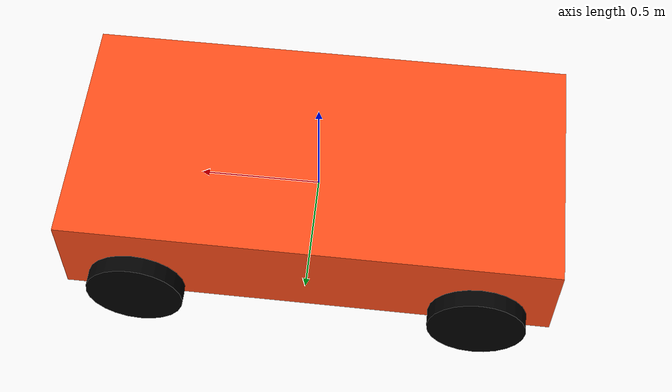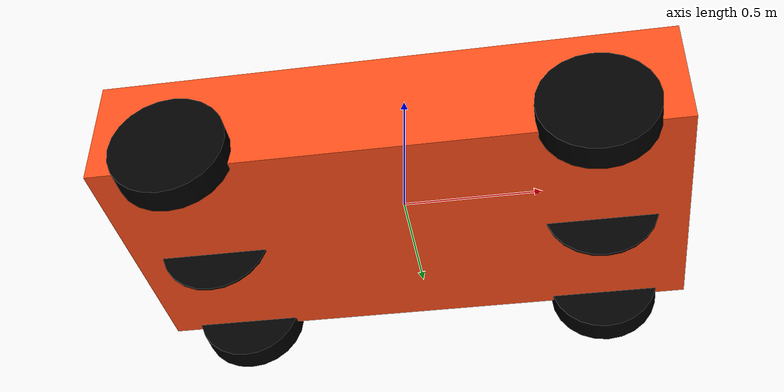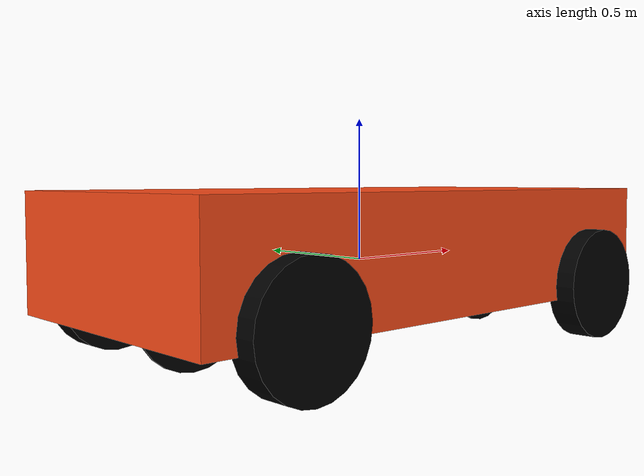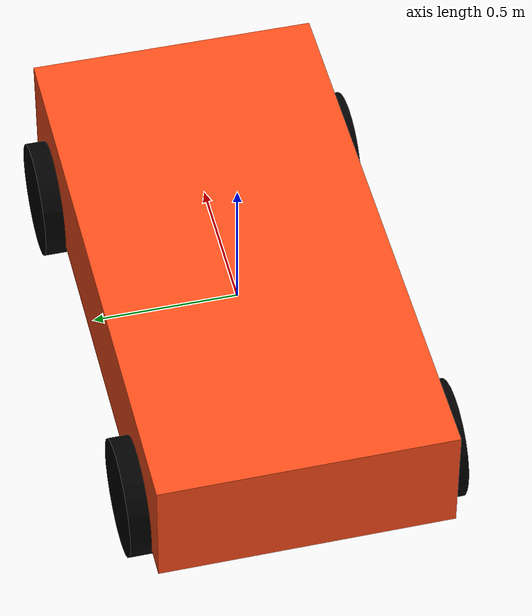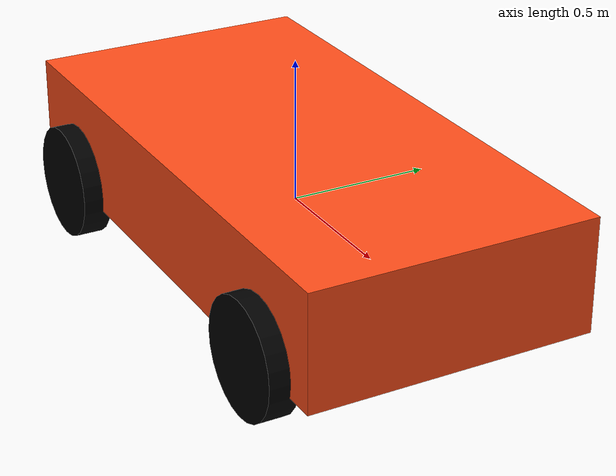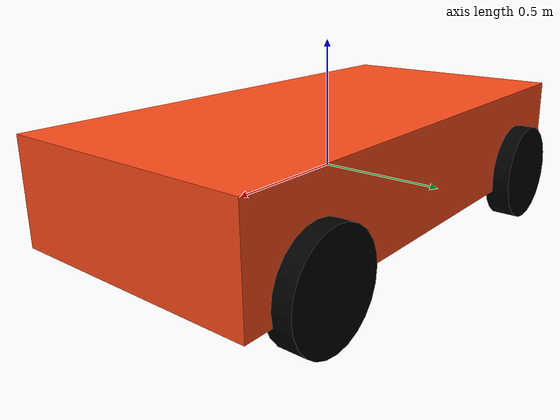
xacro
<?xml version="1.0"?>
<robot xmlns:xacro="http://www.ros.org/wiki/xacro">

    <xacro:include filename="colors.xacro" />
    <xacro:include filename="inertial_macros.xacro" />

    <link name='base_link'>
        <xacro:inertial_box mass="20" x="2" y="1" z="0.4">
            <origin xyz="0 0 0.05" rpy="0 0 0"/>
        </xacro:inertial_box>

        <visual>
          <origin xyz="0 0 0.05" rpy="0 0 0"/>
          <geometry>
            <box size="2 1 0.4"/>
          </geometry>
          <material name="orange" />
        </visual>

        <collision>
          <origin xyz="0 0 0.05" rpy="0 0 0"/>
          <geometry>
            <box size="2 1 0.4"/>
          </geometry>
        </collision>
    </link>

    <gazebo reference="base_link">
        <material>Gazebo/Orange</material>
    </gazebo>

    <link name="virtual_rear_wheel">
      <visual>
        <origin xyz="0 0 0" rpy="0 1.5708 1.5708" />
        <geometry>
          <cylinder length="0.01" radius="0.2"/>
        </geometry>
        <material name="invisible"/>
      </visual>

      <collision>
        <origin xyz="0 0 0" rpy="0 1.5708 1.5708" />
        <geometry>
          <cylinder length="0.01" radius="0.2"/>
        </geometry>
        <material name="invisible"/>
      </collision>

      <xacro:inertial_cylinder mass="1.0" length="0.01" radius="0.2">
            <origin xyz="0 0 0" rpy="0 1.5708 1.5708"/>
      </xacro:inertial_cylinder>
    </link>

    <joint name="virtual_rear_wheel_joint" type="continuous">
      <parent link="base_link"/>
      <child link="virtual_rear_wheel"/>
      <origin xyz="-0.7 0 -0.1" rpy="0 0 0"/>
      <axis xyz="0 1 0" rpy="0 0 0" />
      <limit effort="100.0" velocity="100.0"/>
      <dynamics damping="0.2"/>
    </joint>

    <link name="right_wheel_rear">
      <collision>
        <origin xyz="0 0 0" rpy="0 1.5708 1.5708" />
        <geometry>
          <cylinder length="0.1" radius="0.2"/>
        </geometry>
        <surface>
          <friction>
            <ode>
              <mu>2.0</mu>
              <mu2>2.0</mu2>
              <fdir1>0 0 1</fdir1>
            </ode>
          </friction>
        </surface>
      </collision>

      <visual>
        <origin xyz="0 0 0" rpy="0 1.5708 1.5708" />
        <geometry>
          <cylinder length="0.1" radius="0.2"/>
        </geometry>
        <material name="black"/>
      </visual>

      <xacro:inertial_cylinder mass="1.0" length="0.1" radius="0.2">
            <origin xyz="0 0 0" rpy="0 1.5708 1.5708"/>
      </xacro:inertial_cylinder>

    </link>

    <gazebo reference="right_wheel_rear">
      <material>Gazebo/Black</material>
    </gazebo>

    <joint name="base_right_wheel_rear_joint" type="continuous">
      <parent link="base_link"/>
      <child link="right_wheel_rear"/>
      <origin xyz="-0.7 0.52 -0.1" rpy="0 0 0" />
      <axis xyz="0 1 0" rpy="0 0 0" />
      <limit effort="100.0" velocity="100.0"/>
      <dynamics damping="0.2" />
    </joint>

    <link name="left_wheel_rear">
      <collision>
        <origin xyz="0 0 0" rpy="0 1.5708 1.5708" />
        <geometry>
          <cylinder length="0.1" radius="0.2"/>
        </geometry>
        <surface>
          <friction>
            <ode>
              <mu>2.0</mu>
              <mu2>2.0</mu2>
              <fdir1>0 0 1</fdir1>
            </ode>
          </friction>
        </surface>
      </collision>

      <visual>
        <origin xyz="0 0 0" rpy="0 1.5708 1.5708" />
        <geometry>
          <cylinder length="0.1" radius="0.2"/>
        </geometry>
        <material name="black"/>
      </visual>

      <xacro:inertial_cylinder mass="1.0" length="0.1" radius="0.2">
            <origin xyz="0 0 0" rpy="0 1.5708 1.5708"/>
      </xacro:inertial_cylinder>

    </link>

    <gazebo reference="left_wheel_rear">
      <material>Gazebo/Black</material>
    </gazebo>

    <joint name="base_left_wheel_rear_joint" type="continuous">
      <parent link="base_link"/>
      <child link="left_wheel_rear"/>
      <origin xyz="-0.7 -0.52 -0.1" rpy="0 0 0" />
      <axis xyz="0 1 0" rpy="0 0 0" />
      <limit effort="100.0" velocity="100.0"/>
      <dynamics damping="0.2" />
    </joint>

    <link name="virtual_front_wheel">
      <visual>
        <origin xyz="0 0 0" rpy="0 1.5708 1.5708" />
        <geometry>
          <cylinder length="0.01" radius="0.2"/>
        </geometry>
        <material name="invisible"/>
      </visual>

      <collision>
        <origin xyz="0 0 0" rpy="0 1.5708 1.5708" />
        <geometry>
          <cylinder length="0.01" radius="0.2"/>
        </geometry>
        <material name="invisible"/>
      </collision>

      <xacro:inertial_cylinder mass="1.0" length="0.01" radius="0.2">
            <origin xyz="0 0 0" rpy="0 1.5708 1.5708"/>
      </xacro:inertial_cylinder>
    </link>

    <link name="virtual_steer">
      <visual>
        <origin xyz="0 0 0" rpy="0 0 0" />
        <geometry>
          <cylinder length="0.02" radius="0.04"/>
        </geometry>
        <material name="invisible"/>
      </visual>

      <collision>
        <origin xyz="0 0 0" rpy="0 0 0"/>
        <geometry>
          <cylinder radius="0.04" length="0.02"/>
        </geometry>
      </collision>

      <xacro:inertial_cylinder mass="0.4" length="0.02" radius="0.04">
        <origin xyz="0 0 0" rpy="0 0 0"/>
      </xacro:inertial_cylinder>
    </link>

    <joint name="virtual_steer_joint" type="revolute">
      <parent link="base_link"/>
      <child link="virtual_steer"/>
      <origin xyz="0.7 0 -0.1" rpy="0 0 0"/>
      <axis xyz="0 0 1" rpy="0 0 0" />
      <limit lower="-0.6" upper="0.6" velocity="25.0" effort="25.0"/>
    </joint>

    <joint name="virtual_front_wheel_joint" type="continuous">
      <parent link="virtual_steer"/>
      <child link="virtual_front_wheel"/>
      <origin xyz="0 0 0" rpy="0 0 0"/>
      <axis xyz="0 1 0" rpy="0 0 0" />
      <limit effort="100" velocity="100"/>
      <dynamics damping="0.1" friction="0.2"/>
    </joint>

    <link name="right_wheel_front">
      <collision>
        <origin xyz="0 0 0" rpy="0 1.5708 1.5708" />
        <geometry>
          <cylinder length="0.1" radius="0.2"/>
        </geometry>
          <surface>
            <friction>
              <ode>
                <mu>2.0</mu>
                <mu2>2.0</mu2>
                <fdir1>0 0 1</fdir1>
              </ode>
            </friction>
          </surface>
      </collision>

      <visual>
        <origin xyz="0 0 0" rpy="0 1.5708 1.5708" />
        <geometry>
          <cylinder length="0.1" radius="0.2"/>
        </geometry>
        <material name="black"/>
      </visual>

      <xacro:inertial_cylinder mass="1.0" length="0.1" radius="0.2">
        <origin xyz="0 0 0" rpy="0 1.5708 1.5708"/>
      </xacro:inertial_cylinder>

    </link>

    <gazebo reference="right_wheel_front">
      <material>Gazebo/Black</material>
    </gazebo>

    <link name="left_wheel_front">
      <collision>
        <origin xyz="0 0 0" rpy="0 1.5708 1.5708" />
        <geometry>
          <cylinder length="0.1" radius="0.2"/>
        </geometry>
          <surface>
            <friction>
              <ode>
                <mu>2.0</mu>
                <mu2>4.0</mu2>
                <fdir1>0 0 1</fdir1>
              </ode>
            </friction>
          </surface>
      </collision>

      <visual>
        <origin xyz="0 0 0" rpy="0 1.5708 1.5708" />
        <geometry>
          <cylinder length="0.1" radius="0.2"/>
        </geometry>
        <material name="black"/>
      </visual>

      <xacro:inertial_cylinder mass="1.0" length="0.1" radius="0.2">
          <origin xyz="0 0 0" rpy="0 1.5708 1.5708"/>
      </xacro:inertial_cylinder>
    </link>

    <gazebo reference="left_wheel_front">
      <material>Gazebo/Black</material>
    </gazebo>

    <link name="front_left_wheel_steering_link">
      <collision>
        <origin xyz="0 0 0" rpy="0 0 0"/>
        <geometry>
          <cylinder radius="0.04" length="0.2"/>
        </geometry>
      </collision>

      <visual>
        <origin xyz="0 0 0" rpy="0 0 0"/>
        <geometry>
          <cylinder radius="0.04" length="0.2"/>
        </geometry>
        <material name="black"/>
      </visual>

      <xacro:inertial_cylinder mass="0.4" length="0.2" radius="0.04">
        <origin xyz="0 0 0" rpy="0 0 0"/>
      </xacro:inertial_cylinder>
    </link>

    <link name="front_right_wheel_steering_link">
      <collision>
        <origin xyz="0 0 0" rpy="0 0 0"/>
        <geometry>
          <cylinder radius="0.04" length="0.2"/>
        </geometry>
      </collision>

      <visual>
        <origin xyz="0 0 0" rpy="0 0 0"/>
        <geometry>
          <cylinder radius="0.04" length="0.2"/>
        </geometry>
        <material name="black"/>
      </visual>

      <xacro:inertial_cylinder mass="0.4" length="0.2" radius="0.04">
        <origin xyz="0 0 0" rpy="0 0 0"/>
      </xacro:inertial_cylinder>
    </link>

    <joint name="front_left_wheel_steering_joint" type="revolute">
      <parent link="base_link"/>
      <child link="front_left_wheel_steering_link"/>
      <origin xyz="0.7 -0.52 -0.1" rpy="0 0 0"/>
      <axis xyz="0 0 1" rpy="0 0 0"/>
      <limit lower="-0.6" upper="0.6" velocity="1.0" effort="25"/>
    </joint>

    <joint name="front_right_wheel_steering_joint" type="revolute">
      <parent link="base_link"/>
      <child link="front_right_wheel_steering_link"/>
      <origin xyz="0.7 0.52 -0.1" rpy="0 0 0"/>
      <axis xyz="0 0 1" rpy="0 0 0"/>
      <limit lower="-0.6" upper="0.6" velocity="1.0" effort="25"/>
    </joint>

    <joint name="front_left_wheel_joint" type="continuous">
      <parent link="front_left_wheel_steering_link"/>
      <child link="left_wheel_front"/>
      <origin xyz="0 0 0" rpy="0 0 0"/>
      <axis xyz="0 1 0" rpy="0 0 0"/>
      <limit effort="100" velocity="10"/>
      <dynamics damping="0.1" friction="0.2"/>
    </joint>

    <joint name="front_right_wheel_joint" type="continuous">
      <parent link="front_right_wheel_steering_link"/>
      <child link="right_wheel_front"/>
      <origin xyz="0 0 0" rpy="0 0 0"/>
      <axis xyz="0 1 0" rpy="0 0 0"/>
      <limit effort="100" velocity="10"/>
      <dynamics damping="0.1" friction="0.2"/>
    </joint>

</robot>

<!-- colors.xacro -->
<robot xmlns:xacro="http://www.ros.org/wiki/xacro">

    <material name="grey">
        <color rgba="0.7 0.7 0.7 1"/>
    </material>

    <material name="green">
        <color rgba="0 0.6 0 1"/>
    </material>

    <material name="white">
        <color rgba="1 1 1 1"/>
    </material>

    <material name="black">
        <color rgba="0 0 0 1"/>
    </material>

    <material name="orange">
        <color rgba="1 0.3 0.1 1"/>
    </material>

    <material name="invisible">
        <color rgba="0.0 0.0 0.0 0.0"/>
    </material>

</robot>
